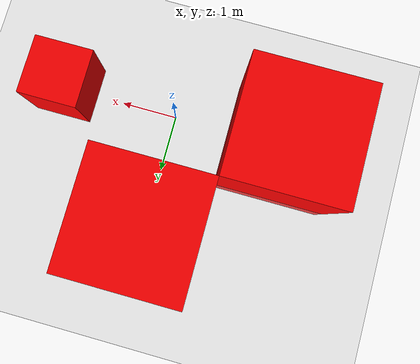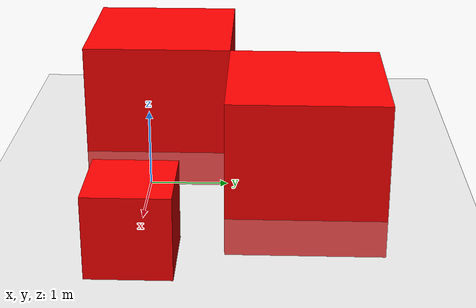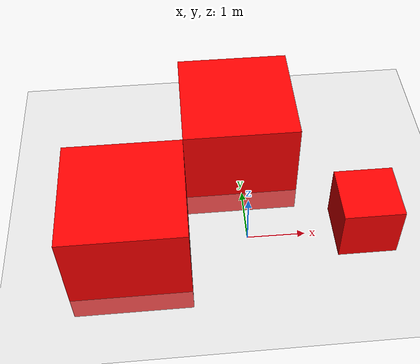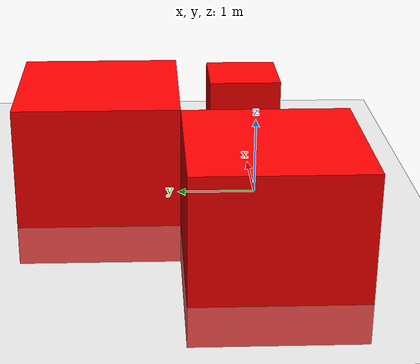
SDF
<?xml version="1.0" ?>
<sdf version="1.11">  <!-- Обновлено на 1.11 для Harmonic -->
  <world name="simple_lidar">
    <!-- Системы Gazebo Harmonic (gz-sim8) -->
    <plugin
      filename="gz-sim-scene-manager-system"
      name="gz::sim::systems::SceneManager">
      <render_engine>ogre2</render_engine>  <!-- Рекомендуется ogre2 в Harmonic -->
      <background_color>0.2 0.2 0.2</background_color>
      <ambient_light>0.8 0.8 0.8</ambient_light>
      <shadows>false</shadows>  <!-- Отключить тени -->
    </plugin>

    <plugin
      filename="gz-sim-sensors-system"
      name="gz::sim::systems::Sensors">
      <render_engine>ogre2</render_engine>
    </plugin>

    <plugin
      filename="gz-sim-imu-system"
      name="gz::sim::systems::Imu">
    </plugin>

    <plugin
      filename="gz-sim-physics-system"
      name="gz::sim::systems::Physics">
    </plugin>

    <plugin
      filename="gz-sim-user-commands-system"
      name="gz::sim::systems::UserCommands">
    </plugin>

    <plugin
      filename="gz-sim-scene-broadcaster-system"
      name="gz::sim::systems::SceneBroadcaster">
    </plugin>

    <!-- Освещение -->
    <include>
      <uri>https://fuel.gazebosim.org/1.0/OpenRobotics/models/Sun</uri>
    </include>

    <!-- Пол -->
    <model name="ground_plane">
      <static>true</static>
      <link name="link">
        <collision name="collision">
          <geometry>
            <plane>
              <normal>0 0 1</normal>
            </plane>
          </geometry>
        </collision>
        <visual name="visual">
          <geometry>
            <plane>
              <normal>0 0 1</normal>
            </plane>
          </geometry>
          <material>
            <ambient>0.8 0.8 0.8 1</ambient>
            <diffuse>0.8 0.8 0.8 1</diffuse>
            <specular>0.8 0.8 0.8 1</specular>
          </material>
        </visual>
      </link>
    </model>

    <!-- Препятствия для лидара -->
    <model name="box1">
      <pose>2 0 0.5 0 0 0</pose>
      <link name="link">
        <collision name="collision">
          <geometry>
            <box>
              <size>2 2 2</size>
            </box>
          </geometry>
        </collision>
        <visual name="visual">
          <geometry>
            <box>
              <size>1 1 1</size>
            </box>
          </geometry>
          <material>
            <ambient>1 0 0 1</ambient>  <!-- Для box1 красный; аналогично для других -->
            <diffuse>1 0 0 1</diffuse>
            <specular>0.1 0.1 0.1 1</specular>
            <emissive>0 0 0 1</emissive>  <!-- Опционально, для свечения -->
          </material>
        </visual>
      </link>
    </model>

    <model name="box2">
      <pose>-2 0 0.5 0 0 0</pose>
      <link name="link">
        <collision name="collision">
          <geometry>
            <box>
              <size>2 2 2</size>
            </box>
          </geometry>
        </collision>
        <visual name="visual">
          <geometry>
            <box>
              <size>2 2 2</size>
            </box>
          </geometry>
          <material>
            <ambient>0 1 0 1</ambient>  <!-- Для box1 красный; аналогично для других -->
            <diffuse>1 0 0 1</diffuse>
            <specular>0.1 0.1 0.1 1</specular>
            <emissive>0 0 0 1</emissive>  <!-- Опционально, для свечения -->
          </material>
        </visual>
      </link>
    </model>

    <model name="box3">
      <pose>0 2 0.5 0 0 0</pose>
      <link name="link">
        <collision name="collision">
          <geometry>
            <box>
              <size>2 2 2</size>
            </box>
          </geometry>
        </collision>
        <visual name="visual">
          <geometry>
            <box>
              <size>2 2 2</size>
            </box>
          </geometry>
          <material>
            <ambient>0 0 1 1</ambient>  <!-- Для box1 красный; аналогично для других -->
            <diffuse>1 0 0 1</diffuse>
            <specular>0.1 0.1 0.1 1</specular>
            <emissive>0 0 0 1</emissive>  <!-- Опционально, для свечения -->
          </material>
        </visual>
      </link>
    </model>
  </world>
</sdf>
